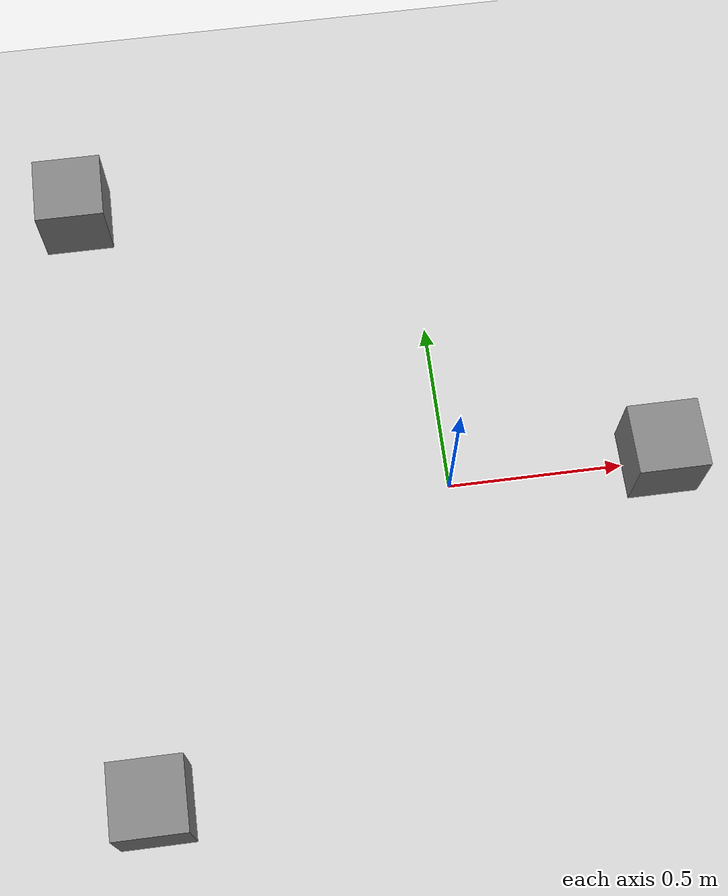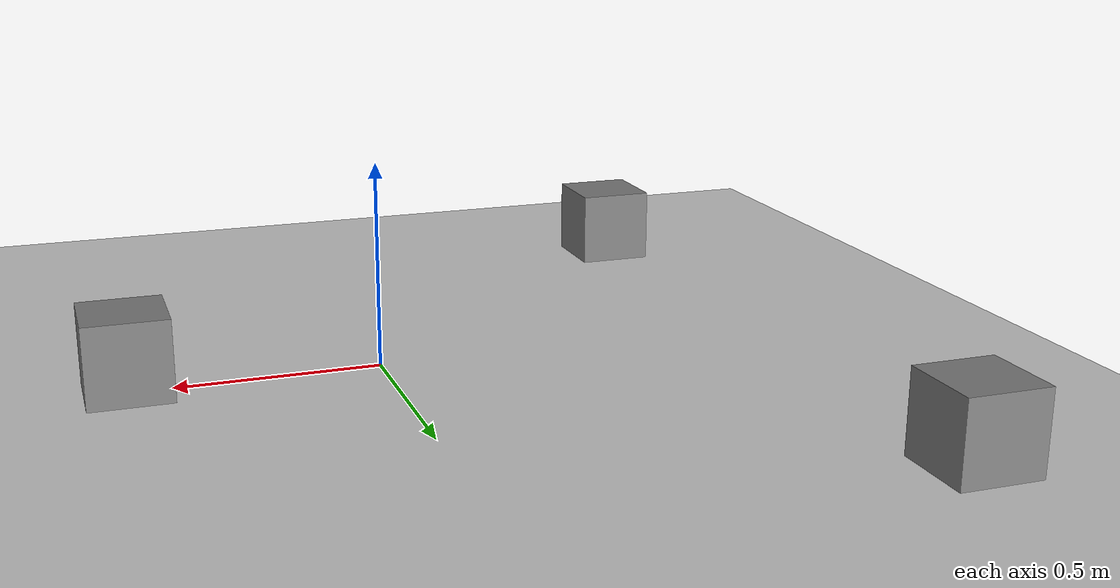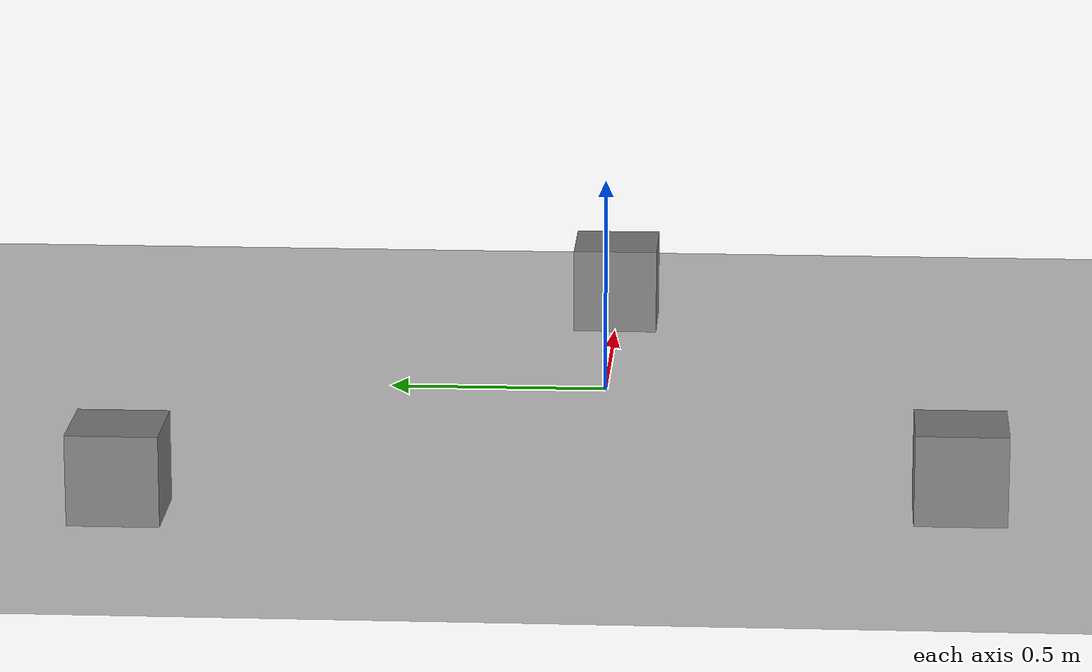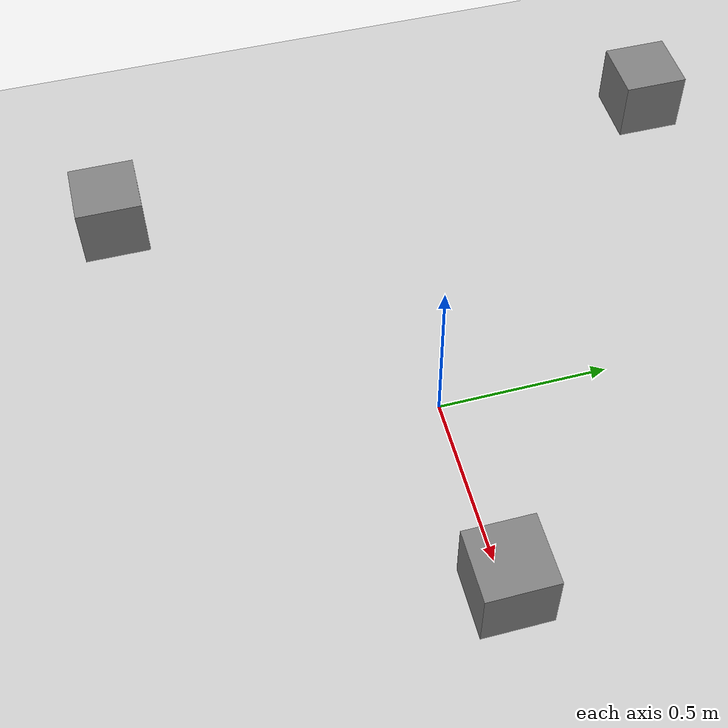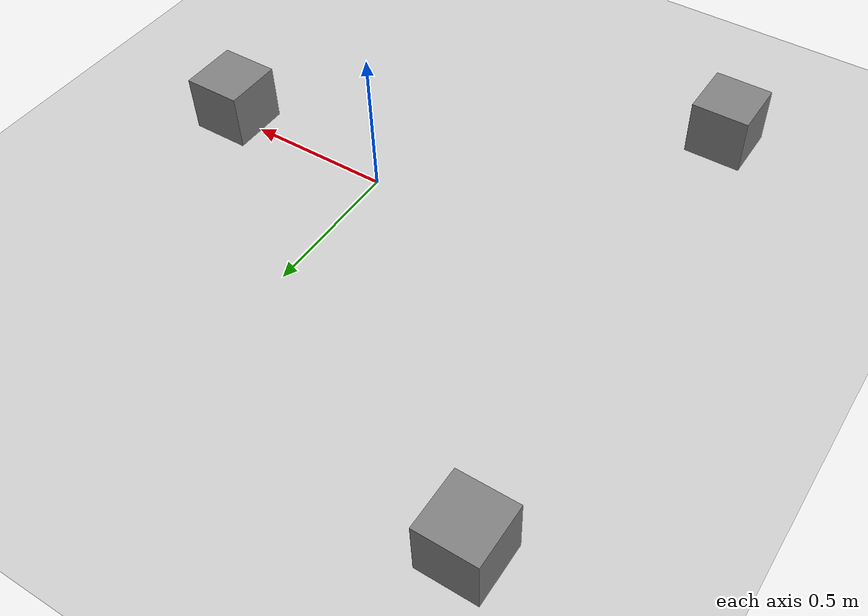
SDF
<?xml version='1.0' encoding='utf-8'?>
<sdf version="1.8">
    <world name="maze">
        <physics name="1ms" type="ignored">
            <max_step_size>0.003</max_step_size>
            <real_time_factor>1</real_time_factor>
            <real_time_update_rate>1000</real_time_update_rate>
        </physics>
        <plugin name="ignition::gazebo::systems::Physics" filename="ignition-gazebo-physics-system" />
        <plugin name="ignition::gazebo::systems::UserCommands" filename="ignition-gazebo-user-commands-system" />
        <plugin name="ignition::gazebo::systems::SceneBroadcaster" filename="ignition-gazebo-scene-broadcaster-system" />
        <plugin name="ignition::gazebo::systems::Contact" filename="ignition-gazebo-contact-system" />
   <plugin name="ignition::gazebo::systems::Sensors" filename="ignition-gazebo-sensors-system">
     <render_engine>ogre2</render_engine>
   </plugin>

        <light name="sun" type="directional">
            <cast_shadows>1</cast_shadows>
            <pose>0 0 10 0 -0 0</pose>
            <diffuse>0.8 0.8 0.8 1</diffuse>
            <specular>0.2 0.2 0.2 1</specular>
            <attenuation>
                <range>1000</range>
                <constant>0.90000000000000002</constant>
                <linear>0.01</linear>
                <quadratic>0.001</quadratic>
            </attenuation>
            <direction>-0.5 0.1 -0.9</direction>
            <spot>
                <inner_angle>0</inner_angle>
                <outer_angle>0</outer_angle>
                <falloff>0</falloff>
            </spot>
        </light>
        <gravity>0 0 -9.8</gravity>
        <magnetic_field>6e-06 2.3e-05 -4.2e-05</magnetic_field>
        <atmosphere type="adiabatic" />
        <scene>
            <ambient>0.4 0.4 0.4 1</ambient>
            <background>0.7 0.7 0.7 1</background>
            <shadows>1</shadows>
        </scene>
        <model name="ground_plane">
            <static>1</static>
            <link name="link">
                <collision name="collision">
                    <geometry>
                        <plane>
                            <normal>0 0 1</normal>
                            <size>100 100</size>
                        </plane>
                    </geometry>
                    <surface>
                        <friction>
                            <ode />
                        </friction>
                        <bounce />
                        <contact />
                    </surface>
                </collision>
                <visual name="visual">
                    <geometry>
                        <plane>
                            <normal>0 0 1</normal>
                            <size>100 100</size>
                        </plane>
                    </geometry>
                    <material>
                        <ambient>0.8 0.8 0.8 1</ambient>
                        <diffuse>0.8 0.8 0.8 1</diffuse>
                        <specular>0.8 0.8 0.8 1</specular>
                    </material>
                    <plugin name="__default__" filename="__default__" />
                </visual>
            </link>
            <plugin name="__default__" filename="__default__" />
            <pose>0 0 0 0 -0 0</pose>
        </model>

        <model name="box_5">
            <static>false</static>
            <type>box</type>
            <pose>0.600000 -0.000000 0.100000 0 0 0</pose>
            <link name="link">
                <collision name="collision">
                    <geometry><box><size>0.200000 0.200000 0.200000</size></box></geometry>
                </collision>
                <visual name="visual">
                    <geometry><box><size>0.200000 0.200000 0.200000</size></box></geometry>
                    <material>
                        <diffuse>0.5 0.5 0.5 1</diffuse>
                    </material>
                </visual><inertial>
                <mass>8.000000</mass>
                <inertia>
                    <ixx>0.053333</ixx><ixy>0</ixy><ixz>0</ixz>
                    <iyy>0.053333</iyy><iyz>0</iyz>
                    <izz>0.053333</izz>
                </inertia>
            </inertial><gravity>false</gravity></link><motion><type>linear</type><velocity>1.000000</velocity><std>0.100000</std><point><x>0.600000</x><y>-0.000000</y></point><point><x>0.700000</x><y>1.400000</y></point></motion></model><model name="box_6">
            <static>false</static>
            <type>box</type>
            <pose>-1.000000 1.000000 0.100000 0 0 0</pose>
            <link name="link">
                <collision name="collision">
                    <geometry><box><size>0.200000 0.200000 0.200000</size></box></geometry>
                </collision>
                <visual name="visual">
                    <geometry><box><size>0.200000 0.200000 0.200000</size></box></geometry>
                    <material>
                        <diffuse>0.5 0.5 0.5 1</diffuse>
                    </material>
                </visual><inertial>
                <mass>8.000000</mass>
                <inertia>
                    <ixx>0.053333</ixx><ixy>0</ixy><ixz>0</ixz>
                    <iyy>0.053333</iyy><iyz>0</iyz>
                    <izz>0.053333</izz>
                </inertia>
            </inertial><gravity>false</gravity></link><motion><type>linear</type><velocity>1.000000</velocity><std>0.100000</std><point><x>-0.900000</x><y>1.000000</y></point><point><x>-1.000000</x><y>2.300000</y></point></motion></model><model name="box_7">
            <static>false</static>
            <type>box</type>
            <pose>-0.900000 -0.800000 0.100000 0 0 0</pose>
            <link name="link">
                <collision name="collision">
                    <geometry><box><size>0.200000 0.200000 0.200000</size></box></geometry>
                </collision>
                <visual name="visual">
                    <geometry><box><size>0.200000 0.200000 0.200000</size></box></geometry>
                    <material>
                        <diffuse>0.5 0.5 0.5 1</diffuse>
                    </material>
                </visual><inertial>
                <mass>8.000000</mass>
                <inertia>
                    <ixx>0.053333</ixx><ixy>0</ixy><ixz>0</ixz>
                    <iyy>0.053333</iyy><iyz>0</iyz>
                    <izz>0.053333</izz>
                </inertia>
            </inertial><gravity>false</gravity></link><motion><type>linear</type><velocity>1.000000</velocity><std>0.100000</std><point><x>-0.900000</x><y>-0.800000</y></point><point><x>-0.900000</x><y>0.500000</y></point></motion></model></world>
</sdf>
